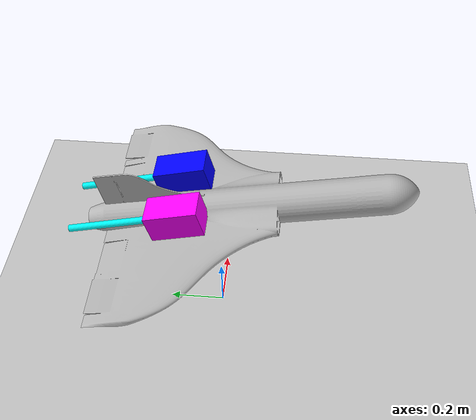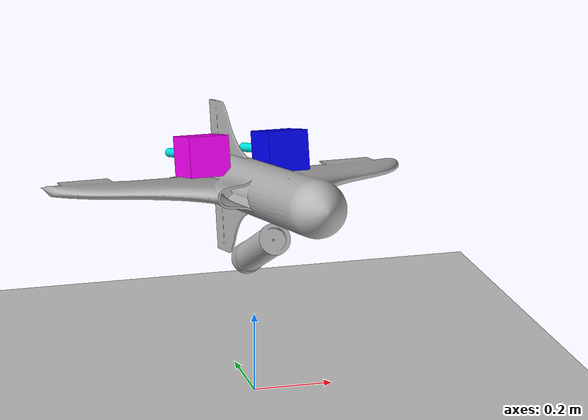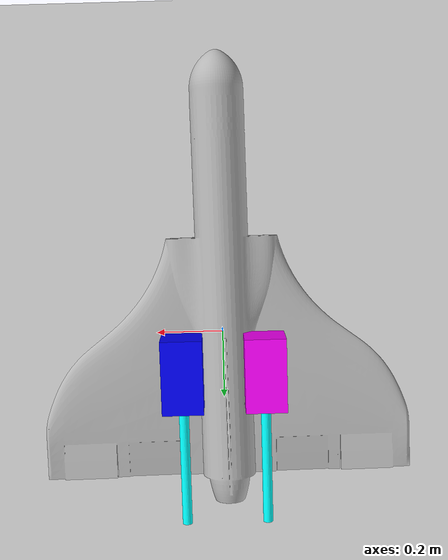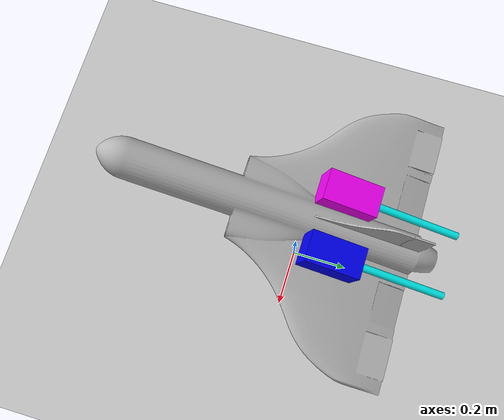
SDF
<sdf version="1.9">
 <world name="sr75_visual_follower_test">
  <plugin filename="gz-sim-physics-system" name="gz::sim::systems::Physics"/>
  <plugin filename="gz-sim-user-commands-system" name="gz::sim::systems::UserCommands"/>
  <plugin filename="gz-sim-scene-broadcaster-system" name="gz::sim::systems::SceneBroadcaster"/>
  <plugin filename="gz-sim-sensors-system" name="gz::sim::systems::Sensors">
   <render_engine>ogre2</render_engine>
  </plugin>
  <plugin filename="gz-sim-imu-system" name="gz::sim::systems::Imu"/>
  <light name="sun" type="directional"><pose>0 0 10 0 0 0</pose><direction>-0.5 0.5 -1</direction></light>
  <model name="ground_plane">
   <static>true</static>
   <link name="link">
    <collision name="collision">
     <geometry><plane><normal>0 0 1</normal><size>100 100</size></plane></geometry>
    </collision>
    <visual name="visual"><geometry><plane><normal>0 0 1</normal><size>100 100</size></plane></geometry></visual>
   </link>
  </model>
  <include><uri>model://sr75_uav_visual_follower</uri><pose>0 0 0.55 1.5708 0 0</pose></include>
 </world>
</sdf>

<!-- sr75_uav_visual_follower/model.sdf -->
<sdf version="1.9">
  <model name="sr75_uav_visual_follower">
    <static>false</static>

    <link name="wing">
      <pose>0 0 0 0 0 0</pose>
      <gravity>false</gravity>
      <inertial>
        <pose>0 0 0 0 0 0</pose>
        <mass>1.0</mass>
        <inertia>
          <ixx>0.1</ixx>
          <ixy>0</ixy>
          <ixz>0</ixz>
          <iyy>0.1</iyy>
          <iyz>0</iyz>
          <izz>0.1</izz>
        </inertia>
      </inertial>

      <visual name="sr75_uav_visual">
        <pose>0 0 0 0 0 0</pose>
        <geometry>
          <mesh>
            <uri>model://sr75_uav_visual_follower/meshes/SR75_UAV.obj</uri>
            <scale>1 1 1</scale>
          </mesh>
        </geometry>
      </visual>

      <sensor name="sr75_chase_camera" type="camera">
        <pose>0 3 1.2 0 0.25 -1.5708</pose>
        <always_on>1</always_on>
        <update_rate>30</update_rate>
        <topic>/sr75/chase_camera/image</topic>
        <camera>
          <horizontal_fov>1.2</horizontal_fov>
          <image>
            <width>1280</width>
            <height>720</height>
          </image>
        </camera>
      </sensor>
    </link>

    <link name="rato_link">
      <pose>0 0 0 0 0 0</pose>
      <gravity>false</gravity>
      <inertial>
        <pose>0 0 0 0 0 0</pose>
        <mass>0.1</mass>
        <inertia>
          <ixx>0.001</ixx>
          <ixy>0</ixy>
          <ixz>0</ixz>
          <iyy>0.001</iyy>
          <iyz>0</iyz>
          <izz>0.001</izz>
        </inertia>
      </inertial>

      <visual name="rato_visual">
        <pose>0 0 0 0 0 0</pose>
        <geometry>
          <mesh>
            <uri>model://sr75_uav_visual_follower/meshes/SR75_RATO.obj</uri>
            <scale>1 1 1</scale>
          </mesh>
        </geometry>
      </visual>
    </link>

    <joint name="rato_to_wing_joint" type="fixed">
      <parent>wing</parent>
      <child>rato_link</child>
    </joint>

    <link name="left_engine_link">
      <pose>0.100 0.030 -0.130 3.141578 1.320793 -1.570811</pose>
      <gravity>false</gravity>
      <inertial>
        <mass>0.001</mass>
        <inertia>
          <ixx>0.000001</ixx>
          <ixy>0</ixy>
          <ixz>0</ixz>
          <iyy>0.000001</iyy>
          <iyz>0</iyz>
          <izz>0.000001</izz>
        </inertia>
      </inertial>

      <visual name="debug_left_engine_block">
        <pose>0 0 0 0 0 0</pose>
        <geometry>
          <box>
            <size>0.18 0.10 0.10</size>
          </box>
        </geometry>
        <material>
          <ambient>0 0 1 1</ambient>
          <diffuse>0 0 1 1</diffuse>
        </material>
      </visual>

      <visual name="debug_left_engine_thrust_direction">
        <pose>0.220 0 0 3.141593 1.570793 3.141593</pose>
        <geometry>
          <cylinder>
            <radius>0.012</radius>
            <length>0.32</length>
          </cylinder>
        </geometry>
        <material>
          <ambient>0 1 1 1</ambient>
          <diffuse>0 1 1 1</diffuse>
        </material>
      </visual>
    </link>

    <joint name="left_engine_joint" type="fixed">
      <parent>wing</parent>
      <child>left_engine_link</child>
    </joint>

    <link name="right_engine_link">
      <pose>-0.100 0.030 -0.130 3.141578 1.320793 -1.570811</pose>
      <gravity>false</gravity>
      <inertial>
        <mass>0.001</mass>
        <inertia>
          <ixx>0.000001</ixx>
          <ixy>0</ixy>
          <ixz>0</ixz>
          <iyy>0.000001</iyy>
          <iyz>0</iyz>
          <izz>0.000001</izz>
        </inertia>
      </inertial>

      <visual name="debug_right_engine_block">
        <pose>0 0 0 0 0 0</pose>
        <geometry>
          <box>
            <size>0.18 0.10 0.10</size>
          </box>
        </geometry>
        <material>
          <ambient>1 0 1 1</ambient>
          <diffuse>1 0 1 1</diffuse>
        </material>
      </visual>

      <visual name="debug_right_engine_thrust_direction">
        <pose>0.220 0 0 3.141593 1.570793 3.141593</pose>
        <geometry>
          <cylinder>
            <radius>0.012</radius>
            <length>0.32</length>
          </cylinder>
        </geometry>
        <material>
          <ambient>0 1 1 1</ambient>
          <diffuse>0 1 1 1</diffuse>
        </material>
      </visual>
    </link>

    <joint name="right_engine_joint" type="fixed">
      <parent>wing</parent>
      <child>right_engine_link</child>
    </joint>

    <link name="imu_link">
      <pose>0 0 0 0 0 0</pose>
      <gravity>false</gravity>
      <inertial>
        <pose>0 0 0 0 0 0</pose>
        <mass>0.15</mass>
        <inertia>
          <ixx>0.00002</ixx>
          <ixy>0</ixy>
          <ixz>0</ixz>
          <iyy>0.00002</iyy>
          <iyz>0</iyz>
          <izz>0.00002</izz>
        </inertia>
      </inertial>

      <sensor name="imu_sensor" type="imu">
        <pose>0 0 0 0 0 0</pose>
        <always_on>1</always_on>
        <update_rate>1000</update_rate>
      </sensor>
    </link>

    <joint name="imu_joint" type="fixed">
      <parent>wing</parent>
      <child>imu_link</child>
    </joint>
  </model>
</sdf>
